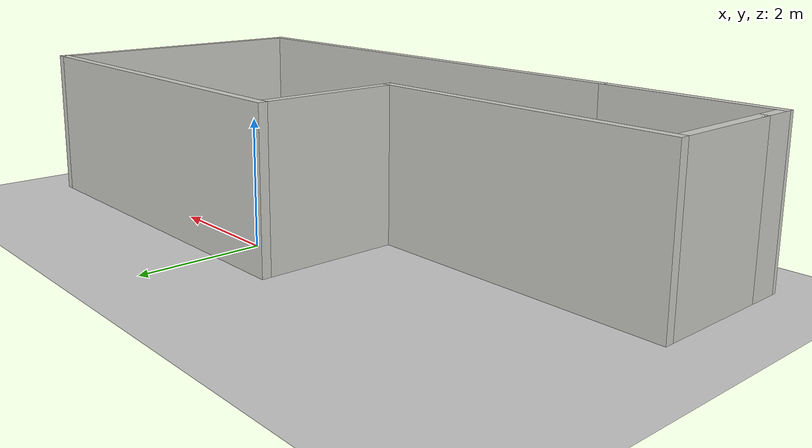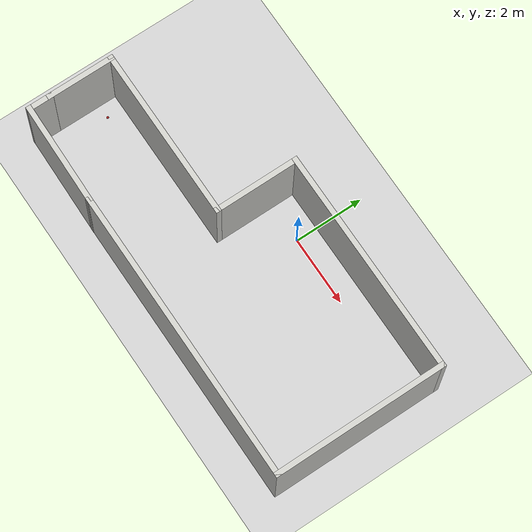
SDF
<sdf version="1.7">
 <world name="default">
  <light name="sun" type="directional">
   <pose>0 0 10 0 -0 0</pose>
   <diffuse>0.8 0.8 0.8 1</diffuse>
   <specular>0.1 0.1 0.1 1</specular>
   <attenuation>
    <range>1000</range>
    <constant>0.9</constant>
    <linear>0.01</linear>
    <quadratic>0.001</quadratic>
   </attenuation>
   <direction>-0.5 0.5 -1</direction>
   <spot><inner_angle>0</inner_angle><outer_angle>0</outer_angle><falloff>0</falloff></spot>
  </light>
  <model name="ground_plane">
   <static>1</static>
   <link name="link">
    <collision name="collision">
     <geometry><plane><normal>0 0 1</normal><size>100 100</size></plane></geometry>
     <surface><friction><ode><mu>100</mu><mu2>50</mu2></ode></friction></surface>
    </collision>
    <visual name="visual">
     <cast_shadows>0</cast_shadows>
     <geometry><plane><normal>0 0 1</normal><size>100 100</size></plane></geometry>
     <material>
      <script><uri>file://media/materials/scripts/gazebo.material</uri><name>Gazebo/Grey</name></script>
     </material>
    </visual>
   </link>
  </model>
  <gravity>0 0 -9.8</gravity>
  <magnetic_field>6e-06 2.3e-05 -4.2e-05</magnetic_field>
  <atmosphere type="adiabatic"/>
  <physics name="default_physics" default="0" type="ode">
   <max_step_size>0.001</max_step_size>
   <real_time_factor>1</real_time_factor>
   <real_time_update_rate>1000</real_time_update_rate>
  </physics>
  <scene><ambient>0.4 0.4 0.4 1</ambient><background>0.7 0.7 0.7 1</background><shadows>1</shadows></scene>
  <spherical_coordinates>
   <surface_model>EARTH_WGS84</surface_model>
   <latitude_deg>0</latitude_deg>
   <longitude_deg>0</longitude_deg>
   <elevation>0</elevation>
   <heading_deg>0</heading_deg>
  </spherical_coordinates>
  <model name="room">
   <pose>-0.42065 -1.74565 0 0 -0 0</pose>
   <link name="Wall_0">
    <collision name="Wall_0_Collision">
     <geometry><box><size>8.5 0.15 2.5</size></box></geometry>
     <pose>0 0 1.25 0 -0 0</pose>
    </collision>
    <visual name="Wall_0_Visual">
     <pose>0 0 1.25 0 -0 0</pose>
     <geometry><box><size>8.5 0.15 2.5</size></box></geometry>
     <material>
      <script><uri>file://media/materials/scripts/gazebo.material</uri><name>Gazebo/CeilingTiled</name></script>
      <ambient>1 1 1 1</ambient>
     </material>
    </visual>
    <pose>1.42565 -2.42435 0 0 -0 0</pose>
   </link>
   <link name="Wall_3">
    <collision name="Wall_3_Collision">
     <geometry><box><size>5 0.15 2.5</size></box></geometry>
     <pose>0 0 1.25 0 -0 0</pose>
    </collision>
    <visual name="Wall_3_Visual">
     <pose>0 0 1.25 0 -0 0</pose>
     <geometry><box><size>5 0.15 2.5</size></box></geometry>
     <material>
      <script><uri>file://media/materials/scripts/gazebo.material</uri><name>Gazebo/CeilingTiled</name></script>
      <ambient>1 1 1 1</ambient>
     </material>
    </visual>
    <pose>5.60065 0.000652 0 0 -0 1.5708</pose>
   </link>
   <link name="Wall_4">
    <collision name="Wall_4_Collision">
     <geometry><box><size>6.5 0.15 2.5</size></box></geometry>
     <pose>0 0 1.25 0 -0 0</pose>
    </collision>
    <visual name="Wall_4_Visual">
     <pose>0 0 1.25 0 -0 0</pose>
     <geometry><box><size>6.5 0.15 2.5</size></box></geometry>
     <material>
      <script><uri>file://media/materials/scripts/gazebo.material</uri><name>Gazebo/CeilingTiled</name></script>
      <ambient>1 1 1 1</ambient>
     </material>
    </visual>
    <pose>2.42565 2.42565 0 0 -0 3.14159</pose>
   </link>
   <link name="Wall_5">
    <collision name="Wall_5_Collision">
     <geometry><box><size>2.5 0.15 2.5</size></box></geometry>
     <pose>0 0 1.25 0 -0 0</pose>
    </collision>
    <visual name="Wall_5_Visual">
     <pose>0 0 1.25 0 -0 0</pose>
     <geometry><box><size>2.5 0.15 2.5</size></box></geometry>
     <material>
      <script><uri>file://media/materials/scripts/gazebo.material</uri><name>Gazebo/CeilingTiled</name></script>
      <ambient>1 1 1 1</ambient>
     </material>
    </visual>
    <pose>-0.749348 1.25065 0 0 0 -1.5708</pose>
   </link>
   <link name="Wall_6">
    <collision name="Wall_6_Collision">
     <geometry><box><size>5 0.15 2.5</size></box></geometry>
     <pose>0 0 1.25 0 -0 0</pose>
    </collision>
    <visual name="Wall_6_Visual">
     <pose>0 0 1.25 0 -0 0</pose>
     <geometry><box><size>5 0.15 2.5</size></box></geometry>
     <material>
      <script><uri>file://media/materials/scripts/gazebo.material</uri><name>Gazebo/CeilingTiled</name></script>
      <ambient>1 1 1 1</ambient>
     </material>
    </visual>
    <pose>-3.17435 0.075652 0 0 -0 3.14159</pose>
   </link>
   <link name="Wall_7">
    <collision name="Wall_7_Collision">
     <geometry><box><size>2 0.15 2.5</size></box></geometry>
     <pose>0 0 1.25 0 -0 0</pose>
    </collision>
    <visual name="Wall_7_Visual">
     <pose>0 0 1.25 0 -0 0</pose>
     <geometry><box><size>2 0.15 2.5</size></box></geometry>
     <material>
      <script><uri>file://media/materials/scripts/gazebo.material</uri><name>Gazebo/CeilingTiled</name></script>
      <ambient>1 1 1 1</ambient>
     </material>
    </visual>
    <pose>-5.59935 -0.849348 0 0 0 -1.5708</pose>
   </link>
   <link name="Wall_8">
    <collision name="Wall_8_Collision">
     <geometry><box><size>0.75 0.15 2.5</size></box></geometry>
     <pose>0 0 1.25 0 -0 0</pose>
    </collision>
    <visual name="Wall_8_Visual">
     <pose>0 0 1.25 0 -0 0</pose>
     <geometry><box><size>0.75 0.15 2.5</size></box></geometry>
     <material>
      <script><uri>file://media/materials/scripts/gazebo.material</uri><name>Gazebo/CeilingTiled</name></script>
      <ambient>1 1 1 1</ambient>
     </material>
    </visual>
    <pose>-5.59935 -2.07435 0 0 0 -1.5708</pose>
   </link>
   <link name="Wall_9">
    <collision name="Wall_9_Collision">
     <geometry><box><size>3.00044 0.15 2.5</size></box></geometry>
     <pose>0 0 1.25 0 -0 0</pose>
    </collision>
    <visual name="Wall_9_Visual">
     <pose>0 0 1.25 0 -0 0</pose>
     <geometry><box><size>3.00044 0.15 2.5</size></box></geometry>
     <material>
      <script><uri>file://media/materials/scripts/gazebo.material</uri><name>Gazebo/CeilingTiled</name></script>
      <ambient>1 1 1 1</ambient>
     </material>
    </visual>
    <pose>-4.17435 -2.39935 0 0 0 -0.017542</pose>
   </link>
   <static>1</static>
  </model>
  <model name="RoboCup SPL Ball">
   <static>0</static>
   <link name="ball">
    <inertial>
     <mass>0.0056</mass>
     <inertia>
      <ixx>2.37e-06</ixx>
      <iyy>2.37e-06</iyy>
      <izz>2.37e-06</izz>
      <ixy>0</ixy>
      <ixz>0</ixz>
      <iyz>0</iyz>
     </inertia>
    </inertial>
    <collision name="collision"><geometry><sphere><radius>0.0325</radius></sphere></geometry></collision>
    <visual name="visual">
     <geometry><sphere><radius>0.0325</radius></sphere></geometry>
     <material>
      <script><uri>file://media/materials/scripts/gazebo.material</uri><name>Gazebo/RedBright</name></script>
     </material>
    </visual>
   </link>
   <pose>-5.49233 -2.25675 0.212885 0 -0 0</pose>
  </model>
 </world>
</sdf>
